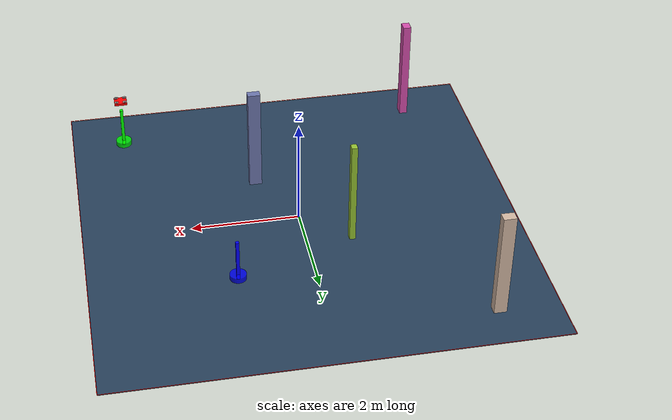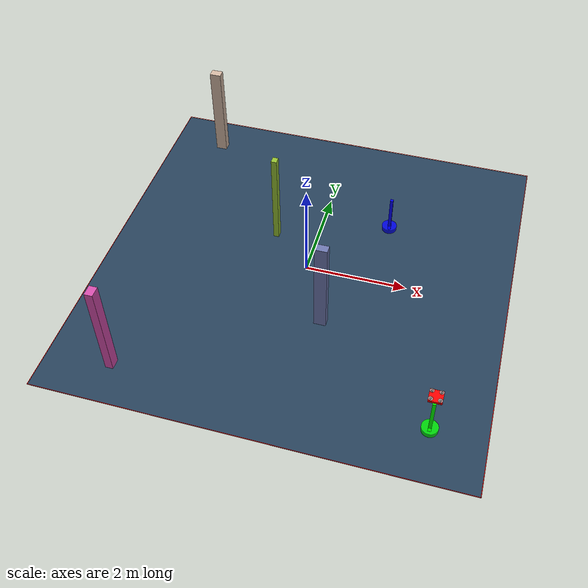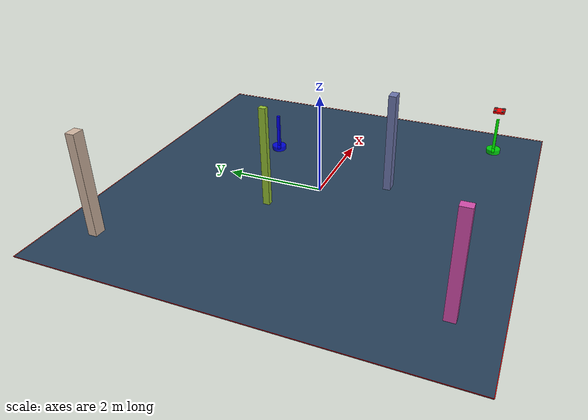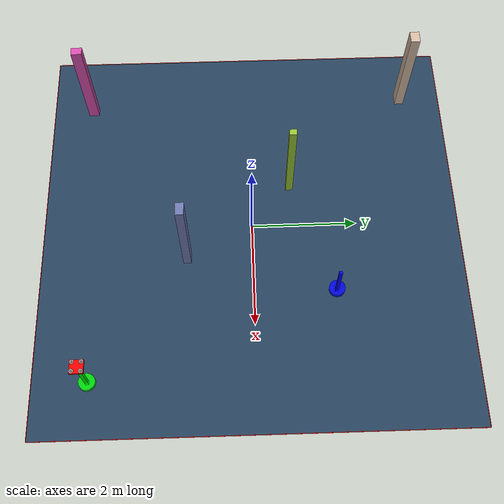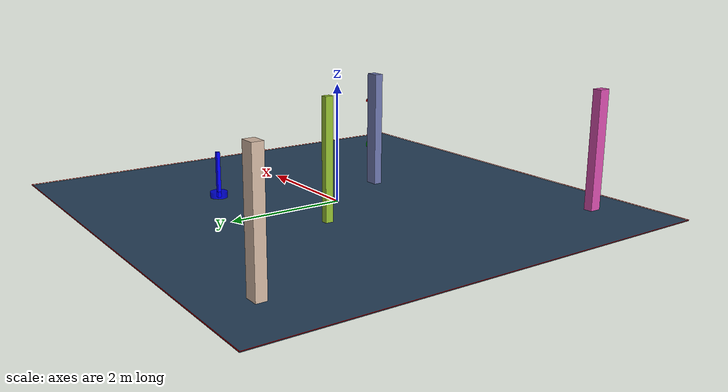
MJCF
<?xml version='1.0' encoding='utf-8'?>
<mujoco model="complex_uav_env">
  <compiler angle="degree" coordinate="local" inertiafromgeom="true" />
  <option integrator="RK4" timestep="0.01" />

  <visual>
    <headlight diffuse="0.6 0.6 0.6" ambient="0.3 0.3 0.3" />
    <rgba haze="0.15 0.25 0.35 1" />
    <global offwidth="2560" offheight="1440" />
  </visual>

  <asset>
    <texture type="skybox" builtin="gradient" rgb1="0.3 0.5 0.7" rgb2="0 0 0" width="512" height="3072" />
    <texture name="grid" type="2d" builtin="checker" rgb1="0.1 0.2 0.3" rgb2="0.2 0.3 0.4" width="512" height="512" />
    <material name="grid" texture="grid" texrepeat="1 1" />
  </asset>

  <worldbody>

    <geom name="ground" type="plane" size="4.0 4.0 0.1" material="grid" />
    <light name="light1" pos="0 0 4" dir="0 0 -1" diffuse="1 1 1" />

    <geom name="start_marker" type="cylinder" size="0.15 0.05" pos="3.0 -3.0 0.05" rgba="0 1 0 0.8" />
    <geom name="start_pole" type="box" size="0.03 0.03 0.4" pos="3.0 -3.0 0.4" rgba="0 1 0 1" />

    <geom name="goal_marker" type="cylinder" size="0.15 0.05" pos="1.3672257596241533 1.5427100264904166 0.05" rgba="0 0 1 0.8" />
    <geom name="goal_pole" type="box" size="0.03 0.03 0.4" pos="1.3672257596241533 1.5427100264904166 0.4" rgba="0 0 1 1" />

    <body name="chassis" pos="3.0 -3.0 1.0">
      <joint type="free" name="root" />
      <geom type="box" size="0.12 0.12 0.02" rgba="1.0 0.0 0.0 1.0" mass="0.8" />

      <geom type="box" size="0.08 0.01 0.005" pos="0 0 0.01" rgba="0.3 0.3 0.3 1" />
      <geom type="box" size="0.01 0.08 0.005" pos="0 0 0.01" rgba="0.3 0.3 0.3 1" />

      <geom type="cylinder" size="0.015 0.02" pos="0.08 0.08 0.015" rgba="0.2 0.2 0.2 1" />
      <geom type="cylinder" size="0.015 0.02" pos="-0.08 0.08 0.015" rgba="0.2 0.2 0.2 1" />
      <geom type="cylinder" size="0.015 0.02" pos="0.08 -0.08 0.015" rgba="0.2 0.2 0.2 1" />
      <geom type="cylinder" size="0.015 0.02" pos="-0.08 -0.08 0.015" rgba="0.2 0.2 0.2 1" />

      <geom type="cylinder" size="0.04 0.002" pos="0.08 0.08 0.035" rgba="0.7 0.7 0.7 0.8" />
      <geom type="cylinder" size="0.04 0.002" pos="-0.08 0.08 0.035" rgba="0.7 0.7 0.7 0.8" />
      <geom type="cylinder" size="0.04 0.002" pos="0.08 -0.08 0.035" rgba="0.7 0.7 0.7 0.8" />
      <geom type="cylinder" size="0.04 0.002" pos="-0.08 -0.08 0.035" rgba="0.7 0.7 0.7 0.8" />

      <site name="motor1" pos="0.08 0.08 0" size="0.01" />
      <site name="motor2" pos="-0.08 0.08 0" size="0.01" />
      <site name="motor3" pos="0.08 -0.08 0" size="0.01" />
      <site name="motor4" pos="-0.08 -0.08 0" size="0.01" />
    </body>
    <geom name="test_obs_0" type="box" size="0.0543223953997546 0.06776070119132999 1.0" pos="-0.8380780341165764 0.7582771113257114 1.0" rgba="0.5778084324899748 0.7487563272737141 0.19204175123252798 1.0" />
    <geom name="test_obs_1" type="box" size="0.07526728101060548 0.09989413261629101 1.0" pos="-2.751714361494352 -3.1892949452236796 1.0" rgba="0.8294286041454207 0.3008451202423781 0.6702926311740905 1.0" />
    <geom name="test_obs_2" type="box" size="0.11428092231170905 0.08606936560102793 1.0" pos="-2.889884077991167 3.1669716022198973 1.0" rgba="0.8243452875953401 0.7175306989274667 0.6368572898360341 1.0" />
    <geom name="test_obs_3" type="box" size="0.1171148658860088 0.07430593765192262 1.0" pos="0.6253748833330686 -1.2431251222587596 1.0" rgba="0.42520774729093513 0.46399801074097025 0.6784372243962684 1.0" />
  <geom name="boundary_north" type="box" size="4.0 0.005 0.002" pos="0 4.0 0.002" rgba="1.0 0.0 0.0 1.0" /><geom name="boundary_south" type="box" size="4.0 0.005 0.002" pos="0 -4.0 0.002" rgba="1.0 0.0 0.0 1.0" /><geom name="boundary_east" type="box" size="0.005 4.0 0.002" pos="4.0 0 0.002" rgba="1.0 0.0 0.0 1.0" /><geom name="boundary_west" type="box" size="0.005 4.0 0.002" pos="-4.0 0 0.002" rgba="1.0 0.0 0.0 1.0" /></worldbody>

  <actuator>
    <motor name="m1" gear="0 0 1 0 0 0" site="motor1" />
    <motor name="m2" gear="0 0 1 0 0 0" site="motor2" />
    <motor name="m3" gear="0 0 1 0 0 0" site="motor3" />
    <motor name="m4" gear="0 0 1 0 0 0" site="motor4" />
  </actuator>
</mujoco>
